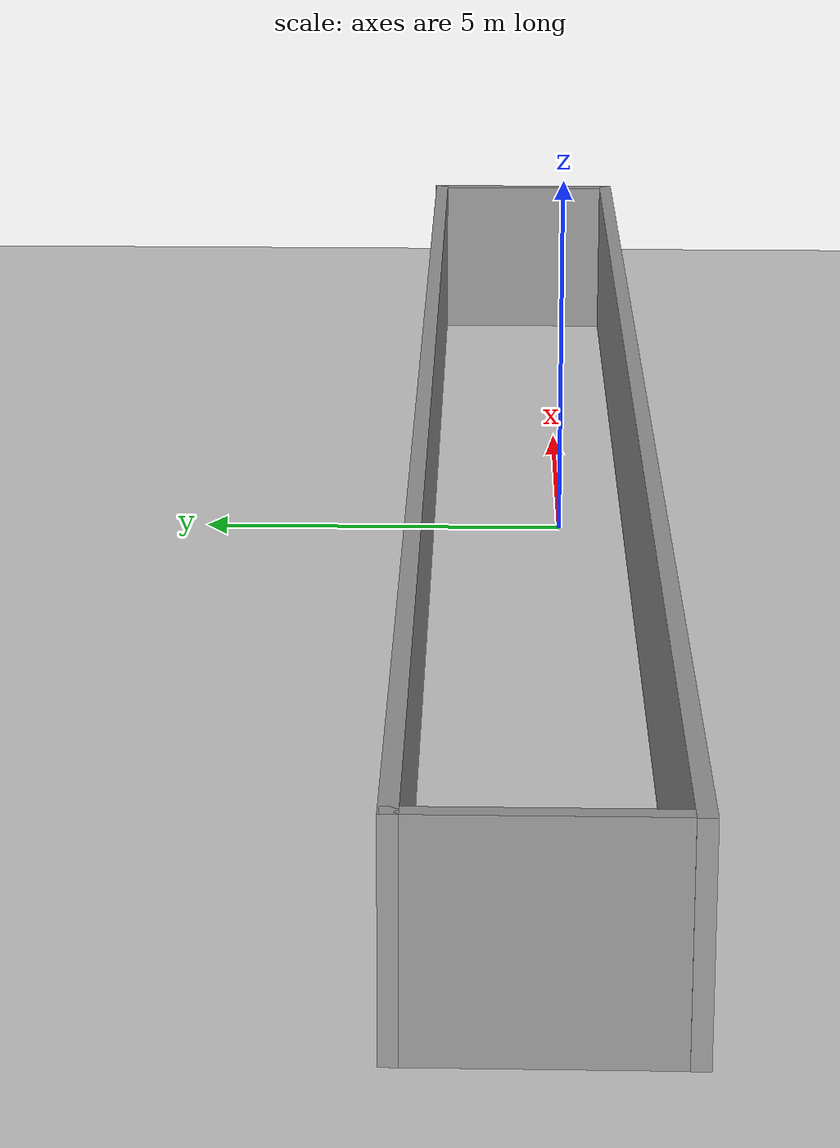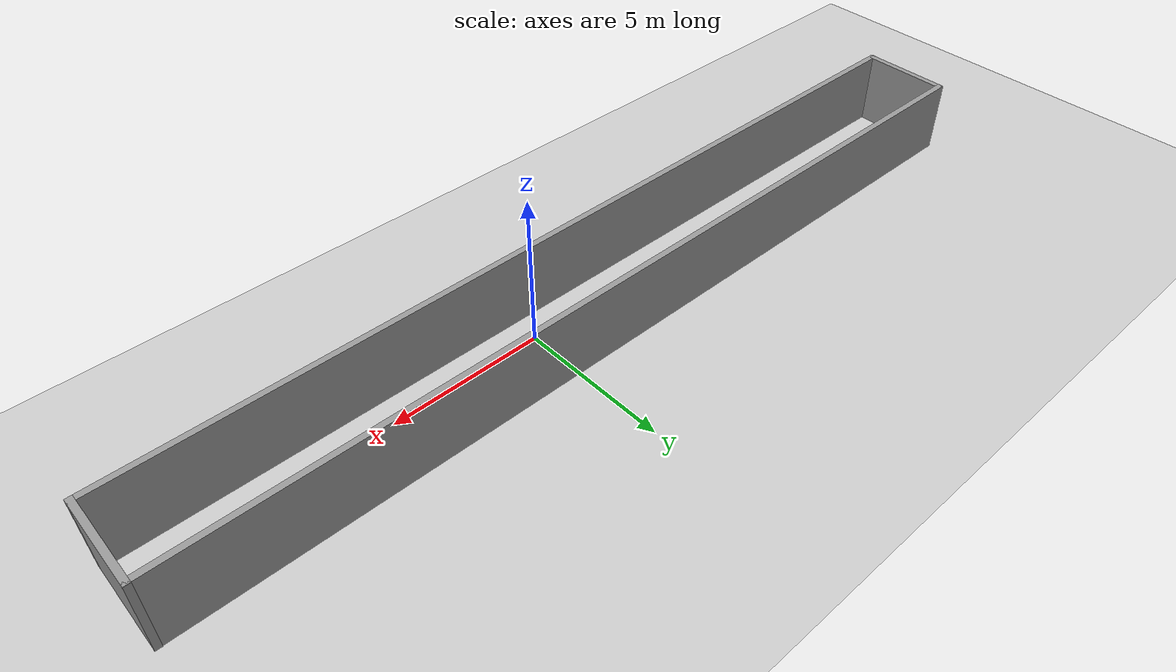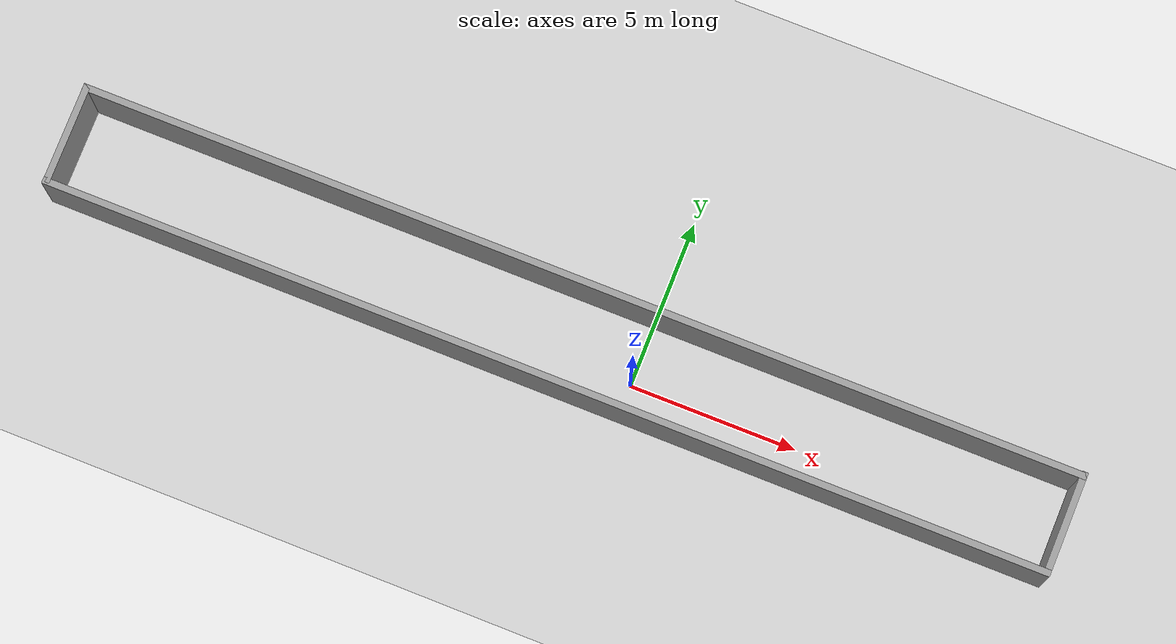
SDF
<sdf version="1.4">
 <world name="default">
  <light name="sun" type="directional">
   <pose>0 0 10 0 -0 0</pose>
   <diffuse>0.8 0.8 0.8 1</diffuse>
   <specular>0.2 0.2 0.2 1</specular>
   <attenuation>
    <range>1000</range>
    <constant>0.9</constant>
    <linear>0.01</linear>
    <quadratic>0.001</quadratic>
   </attenuation>
   <direction>-0.5 0.1 -0.9</direction>
  </light>
  <model name="ground_plane">
   <static>1</static>
   <link name="link">
    <collision name="collision">
     <geometry><plane><normal>0 0 1</normal><size>100 100</size></plane></geometry>
     <surface><friction><ode><mu>100</mu><mu2>50</mu2></ode></friction></surface>
    </collision>
    <visual name="visual">
     <cast_shadows>0</cast_shadows>
     <geometry><plane><normal>0 0 1</normal><size>100 100</size></plane></geometry>
     <material>
      <script><uri>file://media/materials/scripts/gazebo.material</uri><name>Gazebo/Grey</name></script>
     </material>
    </visual>
    <velocity_decay><linear>0</linear><angular>0</angular></velocity_decay>
   </link>
  </model>
  <physics type="ode">
   <max_step_size>0.001</max_step_size>
   <real_time_factor>1</real_time_factor>
   <real_time_update_rate>1000</real_time_update_rate>
   <gravity>0 0 -9.8</gravity>
  </physics>
  <scene><ambient>0.4 0.4 0.4 1</ambient><background>0.7 0.7 0.7 1</background><shadows>1</shadows></scene>
  <spherical_coordinates>
   <surface_model>EARTH_WGS84</surface_model>
   <latitude_deg>0</latitude_deg>
   <longitude_deg>0</longitude_deg>
   <elevation>0</elevation>
   <heading_deg>0</heading_deg>
  </spherical_coordinates>
  <model name="MajorProjectBuilding">
   <link name="Wall_0">
    <collision name="Wall_0_Collision">
     <geometry><box><size>3 0.2 2.5</size></box></geometry>
     <pose>0 0 1.25 0 -0 0</pose>
    </collision>
    <visual name="Wall_0_Visual">
     <pose>0 0 1.25 0 -0 0</pose>
     <geometry><box><size>3 0.2 2.5</size></box></geometry>
     <material>
      <script><uri>file://media/materials/scripts/gazebo.material</uri><name>Gazebo/Grey</name></script>
     </material>
    </visual>
    <velocity_decay><linear>0</linear><angular>0</angular></velocity_decay>
    <pose>-11.1617 -0.538086 0 0 -0 1.5708</pose>
   </link>
   <link name="Wall_2">
    <collision name="Wall_2_Collision">
     <geometry><box><size>30 0.2 2.5</size></box></geometry>
     <pose>0 0 1.25 0 -0 0</pose>
    </collision>
    <visual name="Wall_2_Visual">
     <pose>0 0 1.25 0 -0 0</pose>
     <geometry><box><size>30 0.2 2.5</size></box></geometry>
     <material>
      <script><uri>file://media/materials/scripts/gazebo.material</uri><name>Gazebo/Grey</name></script>
     </material>
    </visual>
    <velocity_decay><linear>0</linear><angular>0</angular></velocity_decay>
    <pose>3.73636 0.879751 0 0 -0 0</pose>
   </link>
   <link name="Wall_7">
    <collision name="Wall_7_Collision">
     <geometry><box><size>3.09942 0.2 2.5</size></box></geometry>
     <pose>0 0 1.25 0 -0 0</pose>
    </collision>
    <visual name="Wall_7_Visual">
     <pose>0 0 1.25 0 -0 0</pose>
     <geometry><box><size>3.09942 0.2 2.5</size></box></geometry>
     <material>
      <script><uri>file://media/materials/scripts/gazebo.material</uri><name>Gazebo/Grey</name></script>
     </material>
    </visual>
    <velocity_decay><linear>0</linear><angular>0</angular></velocity_decay>
    <pose>18.6456 -0.552706 0 0 0 -1.5708</pose>
   </link>
   <link name="Wall_8">
    <collision name="Wall_8_Collision">
     <geometry><box><size>30.0188 0.2 2.5</size></box></geometry>
     <pose>0 0 1.25 0 -0 0</pose>
    </collision>
    <visual name="Wall_8_Visual">
     <pose>0 0 1.25 0 -0 0</pose>
     <geometry><box><size>30.0188 0.2 2.5</size></box></geometry>
     <material>
      <script><uri>file://media/materials/scripts/gazebo.material</uri><name>Gazebo/Grey</name></script>
     </material>
    </visual>
    <velocity_decay><linear>0</linear><angular>0</angular></velocity_decay>
    <pose>3.7362 -2.00242 0 0 -0 3.14159</pose>
   </link>
   <static>1</static>
   <pose>-6 1 0 0 -0 0</pose>
  </model>
 </world>
</sdf>
